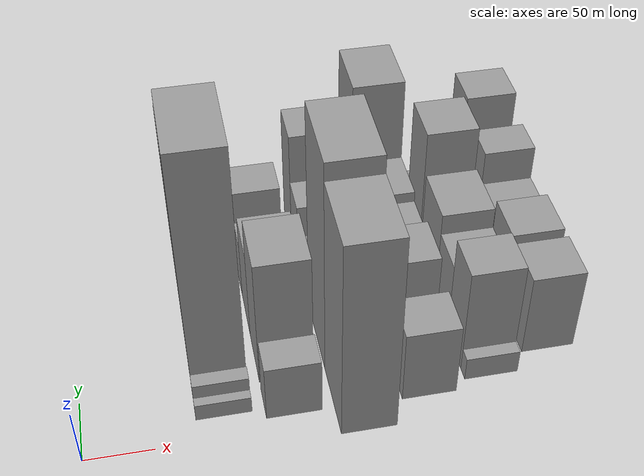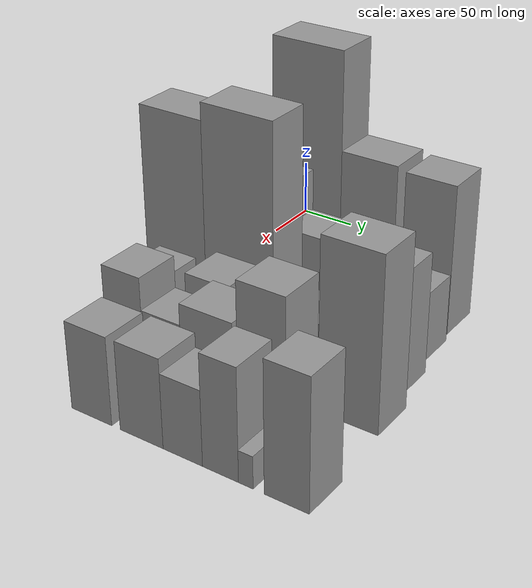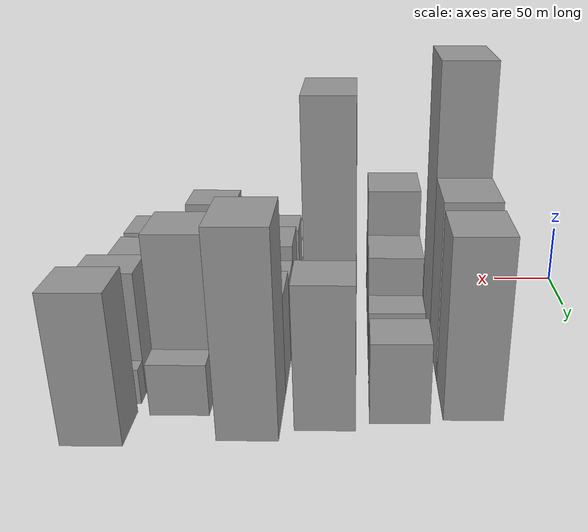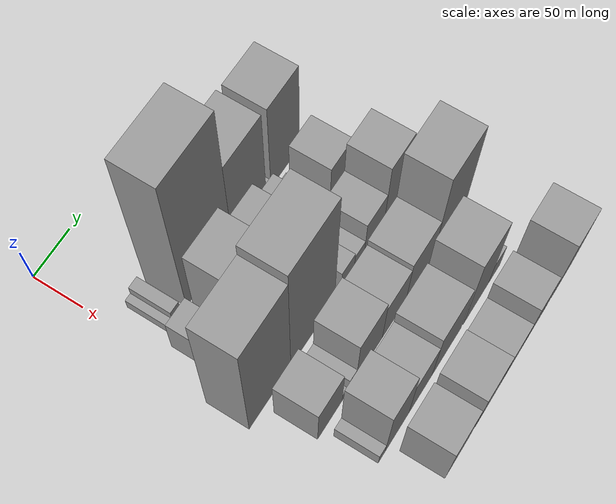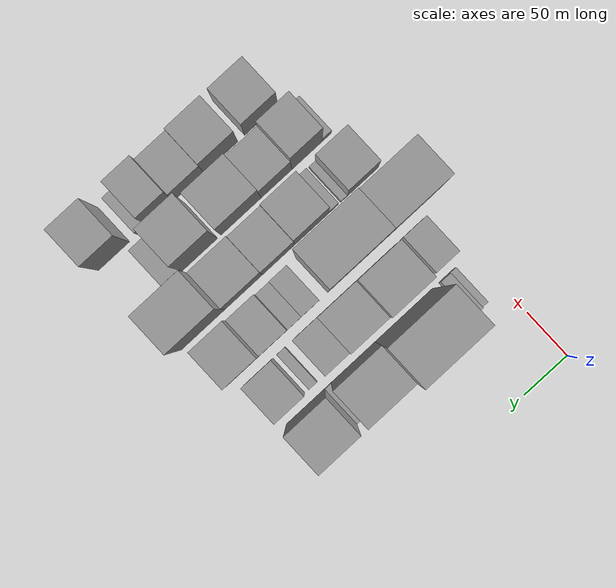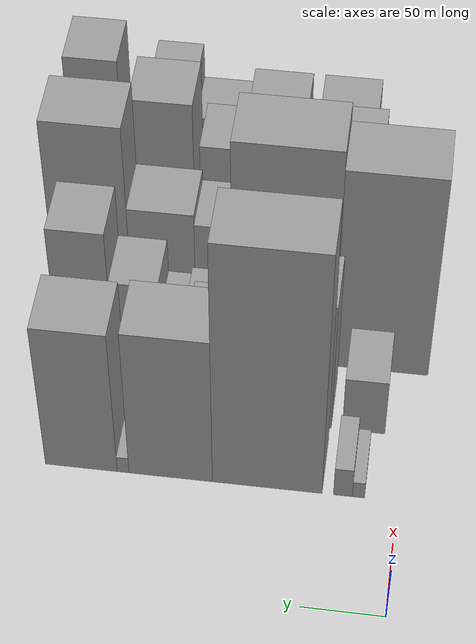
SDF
<sdf version="1.6">
 <world name="default">
  <model name="building_24">
   <static>1</static>
   <pose>100.0000 23.1443 0 0.000000 0.000000 0.000000</pose>
   <link name="link">
    <pose>0 0 7.50 0 0 0</pose>
    <collision name="collision"><geometry><box><size>40.0000 7.4417 15.0000</size></box></geometry></collision>
    <visual name="visual">
     <cast_shadows>0</cast_shadows>
     <geometry><box><size>40.0000 7.4417 15.0000</size></box></geometry>
     <material>
      <script>
       <uri>model://grey_wall/materials/scripts</uri>
       <uri>model://grey_wall/materials/textures</uri>
       <name>vrc/grey_wall</name>
      </script>
     </material>
    </visual>
   </link>
  </model>
  <model name="building_25">
   <static>1</static>
   <pose>100.0000 32.5370 0 0.000000 0.000000 0.000000</pose>
   <link name="link">
    <pose>0 0 13.50 0 0 0</pose>
    <collision name="collision"><geometry><box><size>40.0000 11.3437 27.0000</size></box></geometry></collision>
    <visual name="visual">
     <cast_shadows>0</cast_shadows>
     <geometry><box><size>40.0000 11.3437 27.0000</size></box></geometry>
     <material>
      <script>
       <uri>model://grey_wall/materials/scripts</uri>
       <uri>model://grey_wall/materials/textures</uri>
       <name>vrc/grey_wall</name>
      </script>
     </material>
    </visual>
   </link>
  </model>
  <model name="building_26">
   <static>1</static>
   <pose>100.0000 78.6718 0 0.000000 0.000000 0.000000</pose>
   <link name="link">
    <pose>0 0 109.50 0 0 0</pose>
    <collision name="collision"><geometry><box><size>40.0000 66.9260 219.0000</size></box></geometry></collision>
    <visual name="visual">
     <cast_shadows>0</cast_shadows>
     <geometry><box><size>40.0000 66.9260 219.0000</size></box></geometry>
     <material>
      <script>
       <uri>model://grey_wall/materials/scripts</uri>
       <uri>model://grey_wall/materials/textures</uri>
       <name>vrc/grey_wall</name>
      </script>
     </material>
    </visual>
   </link>
  </model>
  <model name="building_27">
   <static>1</static>
   <pose>100.0000 137.7826 0 0.000000 0.000000 0.000000</pose>
   <link name="link">
    <pose>0 0 67.50 0 0 0</pose>
    <collision name="collision"><geometry><box><size>40.0000 51.2957 135.0000</size></box></geometry></collision>
    <visual name="visual">
     <cast_shadows>0</cast_shadows>
     <geometry><box><size>40.0000 51.2957 135.0000</size></box></geometry>
     <material>
      <script>
       <uri>model://grey_wall/materials/scripts</uri>
       <uri>model://grey_wall/materials/textures</uri>
       <name>vrc/grey_wall</name>
      </script>
     </material>
    </visual>
   </link>
  </model>
  <model name="building_28">
   <static>1</static>
   <pose>100.0000 167.0437 0 0.000000 0.000000 0.000000</pose>
   <link name="link">
    <pose>0 0 7.50 0 0 0</pose>
    <collision name="collision"><geometry><box><size>40.0000 7.2264 15.0000</size></box></geometry></collision>
    <visual name="visual">
     <cast_shadows>0</cast_shadows>
     <geometry><box><size>40.0000 7.2264 15.0000</size></box></geometry>
     <material>
      <script>
       <uri>model://grey_wall/materials/scripts</uri>
       <uri>model://grey_wall/materials/textures</uri>
       <name>vrc/grey_wall</name>
      </script>
     </material>
    </visual>
   </link>
  </model>
  <model name="building_29">
   <static>1</static>
   <pose>100.0000 192.8923 0 0.000000 0.000000 0.000000</pose>
   <link name="link">
    <pose>0 0 66.00 0 0 0</pose>
    <collision name="collision"><geometry><box><size>40.0000 44.4707 132.0000</size></box></geometry></collision>
    <visual name="visual">
     <cast_shadows>0</cast_shadows>
     <geometry><box><size>40.0000 44.4707 132.0000</size></box></geometry>
     <material>
      <script>
       <uri>model://grey_wall/materials/scripts</uri>
       <uri>model://grey_wall/materials/textures</uri>
       <name>vrc/grey_wall</name>
      </script>
     </material>
    </visual>
   </link>
  </model>
  <model name="building_71">
   <static>1</static>
   <pose>149.0000 24.2929 0 0.000000 0.000000 0.000000</pose>
   <link name="link">
    <pose>0 0 25.50 0 0 0</pose>
    <collision name="collision"><geometry><box><size>40.0000 26.3406 51.0000</size></box></geometry></collision>
    <visual name="visual">
     <cast_shadows>0</cast_shadows>
     <geometry><box><size>40.0000 26.3406 51.0000</size></box></geometry>
     <material>
      <script>
       <uri>model://grey_wall/materials/scripts</uri>
       <uri>model://grey_wall/materials/textures</uri>
       <name>vrc/grey_wall</name>
      </script>
     </material>
    </visual>
   </link>
  </model>
  <model name="building_72">
   <static>1</static>
   <pose>149.0000 67.7533 0 0.000000 0.000000 0.000000</pose>
   <link name="link">
    <pose>0 0 58.50 0 0 0</pose>
    <collision name="collision"><geometry><box><size>40.0000 46.5802 117.0000</size></box></geometry></collision>
    <visual name="visual">
     <cast_shadows>0</cast_shadows>
     <geometry><box><size>40.0000 46.5802 117.0000</size></box></geometry>
     <material>
      <script>
       <uri>model://grey_wall/materials/scripts</uri>
       <uri>model://grey_wall/materials/textures</uri>
       <name>vrc/grey_wall</name>
      </script>
     </material>
    </visual>
   </link>
  </model>
  <model name="building_73">
   <static>1</static>
   <pose>149.0000 112.6125 0 0.000000 0.000000 0.000000</pose>
   <link name="link">
    <pose>0 0 40.50 0 0 0</pose>
    <collision name="collision"><geometry><box><size>40.0000 43.1380 81.0000</size></box></geometry></collision>
    <visual name="visual">
     <cast_shadows>0</cast_shadows>
     <geometry><box><size>40.0000 43.1380 81.0000</size></box></geometry>
     <material>
      <script>
       <uri>model://grey_wall/materials/scripts</uri>
       <uri>model://grey_wall/materials/textures</uri>
       <name>vrc/grey_wall</name>
      </script>
     </material>
    </visual>
   </link>
  </model>
  <model name="building_74">
   <static>1</static>
   <pose>149.0000 148.1438 0 0.000000 0.000000 0.000000</pose>
   <link name="link">
    <pose>0 0 25.50 0 0 0</pose>
    <collision name="collision"><geometry><box><size>40.0000 27.9247 51.0000</size></box></geometry></collision>
    <visual name="visual">
     <cast_shadows>0</cast_shadows>
     <geometry><box><size>40.0000 27.9247 51.0000</size></box></geometry>
     <material>
      <script>
       <uri>model://grey_wall/materials/scripts</uri>
       <uri>model://grey_wall/materials/textures</uri>
       <name>vrc/grey_wall</name>
      </script>
     </material>
    </visual>
   </link>
  </model>
  <model name="building_75">
   <static>1</static>
   <pose>149.0000 175.8028 0 0.000000 0.000000 0.000000</pose>
   <link name="link">
    <pose>0 0 10.50 0 0 0</pose>
    <collision name="collision"><geometry><box><size>40.0000 9.3933 21.0000</size></box></geometry></collision>
    <visual name="visual">
     <cast_shadows>0</cast_shadows>
     <geometry><box><size>40.0000 9.3933 21.0000</size></box></geometry>
     <material>
      <script>
       <uri>model://grey_wall/materials/scripts</uri>
       <uri>model://grey_wall/materials/textures</uri>
       <name>vrc/grey_wall</name>
      </script>
     </material>
    </visual>
   </link>
  </model>
  <model name="building_76">
   <static>1</static>
   <pose>149.0000 202.2309 0 0.000000 0.000000 0.000000</pose>
   <link name="link">
    <pose>0 0 30.00 0 0 0</pose>
    <collision name="collision"><geometry><box><size>40.0000 33.4628 60.0000</size></box></geometry></collision>
    <visual name="visual">
     <cast_shadows>0</cast_shadows>
     <geometry><box><size>40.0000 33.4628 60.0000</size></box></geometry>
     <material>
      <script>
       <uri>model://grey_wall/materials/scripts</uri>
       <uri>model://grey_wall/materials/textures</uri>
       <name>vrc/grey_wall</name>
      </script>
     </material>
    </visual>
   </link>
  </model>
  <model name="building_117">
   <static>1</static>
   <pose>198.0000 17.6815 0 0.000000 0.000000 0.000000</pose>
   <link name="link">
    <pose>0 0 90.00 0 0 0</pose>
    <collision name="collision"><geometry><box><size>40.0000 59.9519 180.0000</size></box></geometry></collision>
    <visual name="visual">
     <cast_shadows>0</cast_shadows>
     <geometry><box><size>40.0000 59.9519 180.0000</size></box></geometry>
     <material>
      <script>
       <uri>model://grey_wall/materials/scripts</uri>
       <uri>model://grey_wall/materials/textures</uri>
       <name>vrc/grey_wall</name>
      </script>
     </material>
    </visual>
   </link>
  </model>
  <model name="building_118">
   <static>1</static>
   <pose>198.0000 80.4496 0 0.000000 0.000000 0.000000</pose>
   <link name="link">
    <pose>0 0 97.50 0 0 0</pose>
    <collision name="collision"><geometry><box><size>40.0000 65.5843 195.0000</size></box></geometry></collision>
    <visual name="visual">
     <cast_shadows>0</cast_shadows>
     <geometry><box><size>40.0000 65.5843 195.0000</size></box></geometry>
     <material>
      <script>
       <uri>model://grey_wall/materials/scripts</uri>
       <uri>model://grey_wall/materials/textures</uri>
       <name>vrc/grey_wall</name>
      </script>
     </material>
    </visual>
   </link>
  </model>
  <model name="building_119">
   <static>1</static>
   <pose>198.0000 133.4168 0 0.000000 0.000000 0.000000</pose>
   <link name="link">
    <pose>0 0 18.00 0 0 0</pose>
    <collision name="collision"><geometry><box><size>40.0000 20.3501 36.0000</size></box></geometry></collision>
    <visual name="visual">
     <cast_shadows>0</cast_shadows>
     <geometry><box><size>40.0000 20.3501 36.0000</size></box></geometry>
     <material>
      <script>
       <uri>model://grey_wall/materials/scripts</uri>
       <uri>model://grey_wall/materials/textures</uri>
       <name>vrc/grey_wall</name>
      </script>
     </material>
    </visual>
   </link>
  </model>
  <model name="building_120">
   <static>1</static>
   <pose>198.0000 151.4984 0 0.000000 0.000000 0.000000</pose>
   <link name="link">
    <pose>0 0 15.00 0 0 0</pose>
    <collision name="collision"><geometry><box><size>40.0000 15.8131 30.0000</size></box></geometry></collision>
    <visual name="visual">
     <cast_shadows>0</cast_shadows>
     <geometry><box><size>40.0000 15.8131 30.0000</size></box></geometry>
     <material>
      <script>
       <uri>model://grey_wall/materials/scripts</uri>
       <uri>model://grey_wall/materials/textures</uri>
       <name>vrc/grey_wall</name>
      </script>
     </material>
    </visual>
   </link>
  </model>
  <model name="building_121">
   <static>1</static>
   <pose>198.0000 175.0517 0 0.000000 0.000000 0.000000</pose>
   <link name="link">
    <pose>0 0 30.00 0 0 0</pose>
    <collision name="collision"><geometry><box><size>40.0000 31.2934 60.0000</size></box></geometry></collision>
    <visual name="visual">
     <cast_shadows>0</cast_shadows>
     <geometry><box><size>40.0000 31.2934 60.0000</size></box></geometry>
     <material>
      <script>
       <uri>model://grey_wall/materials/scripts</uri>
       <uri>model://grey_wall/materials/textures</uri>
       <name>vrc/grey_wall</name>
      </script>
     </material>
    </visual>
   </link>
  </model>
  <model name="building_122">
   <static>1</static>
   <pose>198.0000 208.8741 0 0.000000 0.000000 0.000000</pose>
   <link name="link">
    <pose>0 0 52.50 0 0 0</pose>
    <collision name="collision"><geometry><box><size>40.0000 36.3513 105.0000</size></box></geometry></collision>
    <visual name="visual">
     <cast_shadows>0</cast_shadows>
     <geometry><box><size>40.0000 36.3513 105.0000</size></box></geometry>
     <material>
      <script>
       <uri>model://grey_wall/materials/scripts</uri>
       <uri>model://grey_wall/materials/textures</uri>
       <name>vrc/grey_wall</name>
      </script>
     </material>
    </visual>
   </link>
  </model>
  <model name="building_176">
   <static>1</static>
   <pose>247.0000 27.2455 0 0.000000 0.000000 0.000000</pose>
   <link name="link">
    <pose>0 0 33.00 0 0 0</pose>
    <collision name="collision"><geometry><box><size>40.0000 36.0581 66.0000</size></box></geometry></collision>
    <visual name="visual">
     <cast_shadows>0</cast_shadows>
     <geometry><box><size>40.0000 36.0581 66.0000</size></box></geometry>
     <material>
      <script>
       <uri>model://grey_wall/materials/scripts</uri>
       <uri>model://grey_wall/materials/textures</uri>
       <name>vrc/grey_wall</name>
      </script>
     </material>
    </visual>
   </link>
  </model>
  <model name="building_177">
   <static>1</static>
   <pose>247.0000 48.9995 0 0.000000 0.000000 0.000000</pose>
   <link name="link">
    <pose>0 0 7.50 0 0 0</pose>
    <collision name="collision"><geometry><box><size>40.0000 7.4499 15.0000</size></box></geometry></collision>
    <visual name="visual">
     <cast_shadows>0</cast_shadows>
     <geometry><box><size>40.0000 7.4499 15.0000</size></box></geometry>
     <material>
      <script>
       <uri>model://grey_wall/materials/scripts</uri>
       <uri>model://grey_wall/materials/textures</uri>
       <name>vrc/grey_wall</name>
      </script>
     </material>
    </visual>
   </link>
  </model>
  <model name="building_178">
   <static>1</static>
   <pose>247.0000 61.1240 0 0.000000 0.000000 0.000000</pose>
   <link name="link">
    <pose>0 0 12.00 0 0 0</pose>
    <collision name="collision"><geometry><box><size>40.0000 10.7992 24.0000</size></box></geometry></collision>
    <visual name="visual">
     <cast_shadows>0</cast_shadows>
     <geometry><box><size>40.0000 10.7992 24.0000</size></box></geometry>
     <material>
      <script>
       <uri>model://grey_wall/materials/scripts</uri>
       <uri>model://grey_wall/materials/textures</uri>
       <name>vrc/grey_wall</name>
      </script>
     </material>
    </visual>
   </link>
  </model>
  <model name="building_179">
   <static>1</static>
   <pose>247.0000 86.4545 0 0.000000 0.000000 0.000000</pose>
   <link name="link">
    <pose>0 0 39.00 0 0 0</pose>
    <collision name="collision"><geometry><box><size>40.0000 39.8616 78.0000</size></box></geometry></collision>
    <visual name="visual">
     <cast_shadows>0</cast_shadows>
     <geometry><box><size>40.0000 39.8616 78.0000</size></box></geometry>
     <material>
      <script>
       <uri>model://grey_wall/materials/scripts</uri>
       <uri>model://grey_wall/materials/textures</uri>
       <name>vrc/grey_wall</name>
      </script>
     </material>
    </visual>
   </link>
  </model>
  <model name="building_180">
   <static>1</static>
   <pose>247.0000 124.9820 0 0.000000 0.000000 0.000000</pose>
   <link name="link">
    <pose>0 0 33.00 0 0 0</pose>
    <collision name="collision"><geometry><box><size>40.0000 37.1934 66.0000</size></box></geometry></collision>
    <visual name="visual">
     <cast_shadows>0</cast_shadows>
     <geometry><box><size>40.0000 37.1934 66.0000</size></box></geometry>
     <material>
      <script>
       <uri>model://grey_wall/materials/scripts</uri>
       <uri>model://grey_wall/materials/textures</uri>
       <name>vrc/grey_wall</name>
      </script>
     </material>
    </visual>
   </link>
  </model>
  <model name="building_181">
   <static>1</static>
   <pose>247.0000 165.1188 0 0.000000 0.000000 0.000000</pose>
   <link name="link">
    <pose>0 0 37.50 0 0 0</pose>
    <collision name="collision"><geometry><box><size>40.0000 43.0802 75.0000</size></box></geometry></collision>
    <visual name="visual">
     <cast_shadows>0</cast_shadows>
     <geometry><box><size>40.0000 43.0802 75.0000</size></box></geometry>
     <material>
      <script>
       <uri>model://grey_wall/materials/scripts</uri>
       <uri>model://grey_wall/materials/textures</uri>
       <name>vrc/grey_wall</name>
      </script>
     </material>
    </visual>
   </link>
  </model>
  <model name="building_182">
   <static>1</static>
   <pose>247.0000 212.2404 0 0.000000 0.000000 0.000000</pose>
   <link name="link">
    <pose>0 0 73.50 0 0 0</pose>
    <collision name="collision"><geometry><box><size>40.0000 51.1630 147.0000</size></box></geometry></collision>
    <visual name="visual">
     <cast_shadows>0</cast_shadows>
     <geometry><box><size>40.0000 51.1630 147.0000</size></box></geometry>
     <material>
      <script>
       <uri>model://grey_wall/materials/scripts</uri>
       <uri>model://grey_wall/materials/textures</uri>
       <name>vrc/grey_wall</name>
      </script>
     </material>
    </visual>
   </link>
  </model>
  <model name="building_227">
   <static>1</static>
   <pose>296.0000 23.2992 0 0.000000 0.000000 0.000000</pose>
   <link name="link">
    <pose>0 0 10.50 0 0 0</pose>
    <collision name="collision"><geometry><box><size>40.0000 10.2644 21.0000</size></box></geometry></collision>
    <visual name="visual">
     <cast_shadows>0</cast_shadows>
     <geometry><box><size>40.0000 10.2644 21.0000</size></box></geometry>
     <material>
      <script>
       <uri>model://grey_wall/materials/scripts</uri>
       <uri>model://grey_wall/materials/textures</uri>
       <name>vrc/grey_wall</name>
      </script>
     </material>
    </visual>
   </link>
  </model>
  <model name="building_228">
   <static>1</static>
   <pose>296.0000 46.3865 0 0.000000 0.000000 0.000000</pose>
   <link name="link">
    <pose>0 0 48.00 0 0 0</pose>
    <collision name="collision"><geometry><box><size>40.0000 35.9102 96.0000</size></box></geometry></collision>
    <visual name="visual">
     <cast_shadows>0</cast_shadows>
     <geometry><box><size>40.0000 35.9102 96.0000</size></box></geometry>
     <material>
      <script>
       <uri>model://grey_wall/materials/scripts</uri>
       <uri>model://grey_wall/materials/textures</uri>
       <name>vrc/grey_wall</name>
      </script>
     </material>
    </visual>
   </link>
  </model>
  <model name="building_229">
   <static>1</static>
   <pose>296.0000 82.3014 0 0.000000 0.000000 0.000000</pose>
   <link name="link">
    <pose>0 0 34.50 0 0 0</pose>
    <collision name="collision"><geometry><box><size>40.0000 35.9196 69.0000</size></box></geometry></collision>
    <visual name="visual">
     <cast_shadows>0</cast_shadows>
     <geometry><box><size>40.0000 35.9196 69.0000</size></box></geometry>
     <material>
      <script>
       <uri>model://grey_wall/materials/scripts</uri>
       <uri>model://grey_wall/materials/textures</uri>
       <name>vrc/grey_wall</name>
      </script>
     </material>
    </visual>
   </link>
  </model>
  <model name="building_230">
   <static>1</static>
   <pose>296.0000 123.4803 0 0.000000 0.000000 0.000000</pose>
   <link name="link">
    <pose>0 0 43.50 0 0 0</pose>
    <collision name="collision"><geometry><box><size>40.0000 46.4382 87.0000</size></box></geometry></collision>
    <visual name="visual">
     <cast_shadows>0</cast_shadows>
     <geometry><box><size>40.0000 46.4382 87.0000</size></box></geometry>
     <material>
      <script>
       <uri>model://grey_wall/materials/scripts</uri>
       <uri>model://grey_wall/materials/textures</uri>
       <name>vrc/grey_wall</name>
      </script>
     </material>
    </visual>
   </link>
  </model>
  <model name="building_231">
   <static>1</static>
   <pose>296.0000 171.2193 0 0.000000 0.000000 0.000000</pose>
   <link name="link">
    <pose>0 0 61.50 0 0 0</pose>
    <collision name="collision"><geometry><box><size>40.0000 41.0397 123.0000</size></box></geometry></collision>
    <visual name="visual">
     <cast_shadows>0</cast_shadows>
     <geometry><box><size>40.0000 41.0397 123.0000</size></box></geometry>
     <material>
      <script>
       <uri>model://grey_wall/materials/scripts</uri>
       <uri>model://grey_wall/materials/textures</uri>
       <name>vrc/grey_wall</name>
      </script>
     </material>
    </visual>
   </link>
  </model>
  <model name="building_232">
   <static>1</static>
   <pose>296.0000 201.5705 0 0.000000 0.000000 0.000000</pose>
   <link name="link">
    <pose>0 0 19.50 0 0 0</pose>
    <collision name="collision"><geometry><box><size>40.0000 19.6628 39.0000</size></box></geometry></collision>
    <visual name="visual">
     <cast_shadows>0</cast_shadows>
     <geometry><box><size>40.0000 19.6628 39.0000</size></box></geometry>
     <material>
      <script>
       <uri>model://grey_wall/materials/scripts</uri>
       <uri>model://grey_wall/materials/textures</uri>
       <name>vrc/grey_wall</name>
      </script>
     </material>
    </visual>
   </link>
  </model>
  <model name="building_276">
   <static>1</static>
   <pose>345.0000 54.5468 0 0.000000 0.000000 0.000000</pose>
   <link name="link">
    <pose>0 0 37.50 0 0 0</pose>
    <collision name="collision"><geometry><box><size>40.0000 38.6106 75.0000</size></box></geometry></collision>
    <visual name="visual">
     <cast_shadows>0</cast_shadows>
     <geometry><box><size>40.0000 38.6106 75.0000</size></box></geometry>
     <material>
      <script>
       <uri>model://grey_wall/materials/scripts</uri>
       <uri>model://grey_wall/materials/textures</uri>
       <name>vrc/grey_wall</name>
      </script>
     </material>
    </visual>
   </link>
  </model>
  <model name="building_277">
   <static>1</static>
   <pose>345.0000 101.5762 0 0.000000 0.000000 0.000000</pose>
   <link name="link">
    <pose>0 0 37.50 0 0 0</pose>
    <collision name="collision"><geometry><box><size>40.0000 39.4482 75.0000</size></box></geometry></collision>
    <visual name="visual">
     <cast_shadows>0</cast_shadows>
     <geometry><box><size>40.0000 39.4482 75.0000</size></box></geometry>
     <material>
      <script>
       <uri>model://grey_wall/materials/scripts</uri>
       <uri>model://grey_wall/materials/textures</uri>
       <name>vrc/grey_wall</name>
      </script>
     </material>
    </visual>
   </link>
  </model>
  <model name="building_278">
   <static>1</static>
   <pose>345.0000 138.6763 0 0.000000 0.000000 0.000000</pose>
   <link name="link">
    <pose>0 0 31.50 0 0 0</pose>
    <collision name="collision"><geometry><box><size>40.0000 34.7520 63.0000</size></box></geometry></collision>
    <visual name="visual">
     <cast_shadows>0</cast_shadows>
     <geometry><box><size>40.0000 34.7520 63.0000</size></box></geometry>
     <material>
      <script>
       <uri>model://grey_wall/materials/scripts</uri>
       <uri>model://grey_wall/materials/textures</uri>
       <name>vrc/grey_wall</name>
      </script>
     </material>
    </visual>
   </link>
  </model>
  <model name="building_279">
   <static>1</static>
   <pose>345.0000 171.3304 0 0.000000 0.000000 0.000000</pose>
   <link name="link">
    <pose>0 0 46.50 0 0 0</pose>
    <collision name="collision"><geometry><box><size>40.0000 30.5562 93.0000</size></box></geometry></collision>
    <visual name="visual">
     <cast_shadows>0</cast_shadows>
     <geometry><box><size>40.0000 30.5562 93.0000</size></box></geometry>
     <material>
      <script>
       <uri>model://grey_wall/materials/scripts</uri>
       <uri>model://grey_wall/materials/textures</uri>
       <name>vrc/grey_wall</name>
      </script>
     </material>
    </visual>
   </link>
  </model>
  <model name="building_280">
   <static>1</static>
   <pose>345.0000 192.7028 0 0.000000 0.000000 0.000000</pose>
   <link name="link">
    <pose>0 0 13.50 0 0 0</pose>
    <collision name="collision"><geometry><box><size>40.0000 12.1884 27.0000</size></box></geometry></collision>
    <visual name="visual">
     <cast_shadows>0</cast_shadows>
     <geometry><box><size>40.0000 12.1884 27.0000</size></box></geometry>
     <material>
      <script>
       <uri>model://grey_wall/materials/scripts</uri>
       <uri>model://grey_wall/materials/textures</uri>
       <name>vrc/grey_wall</name>
      </script>
     </material>
    </visual>
   </link>
  </model>
  <model name="building_281">
   <static>1</static>
   <pose>345.0000 225.8508 0 0.000000 0.000000 0.000000</pose>
   <link name="link">
    <pose>0 0 54.00 0 0 0</pose>
    <collision name="collision"><geometry><box><size>40.0000 36.1076 108.0000</size></box></geometry></collision>
    <visual name="visual">
     <cast_shadows>0</cast_shadows>
     <geometry><box><size>40.0000 36.1076 108.0000</size></box></geometry>
     <material>
      <script>
       <uri>model://grey_wall/materials/scripts</uri>
       <uri>model://grey_wall/materials/textures</uri>
       <name>vrc/grey_wall</name>
      </script>
     </material>
    </visual>
   </link>
  </model>
 </world>
</sdf>
